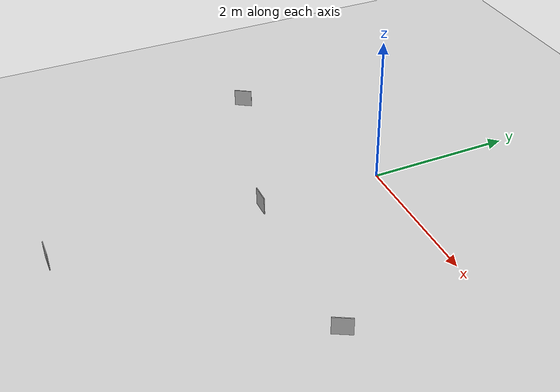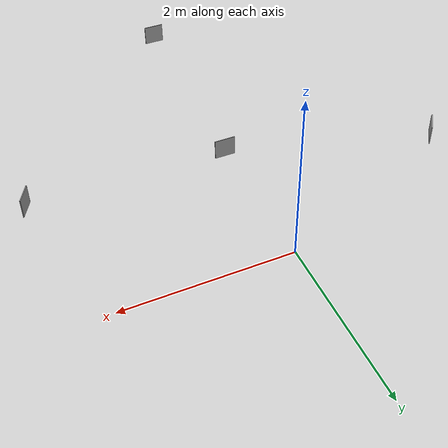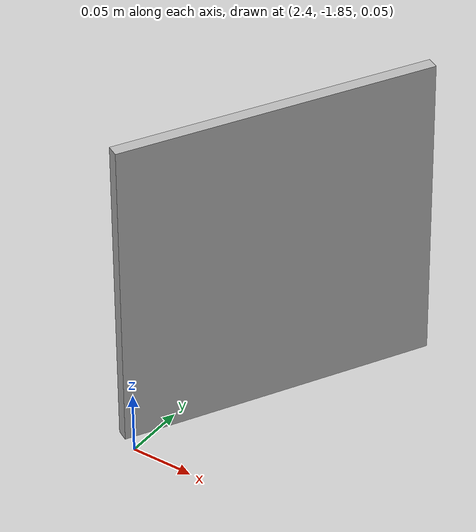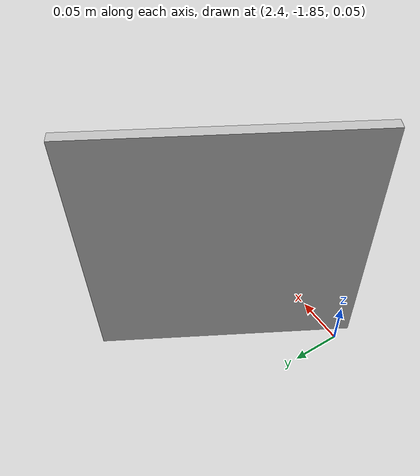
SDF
<sdf version="1.7">
 <world name="default">
  <model name="ground_plane">
   <static>1</static>
   <link name="link">
    <collision name="collision">
     <geometry><plane><normal>0 0 1</normal><size>100 100</size></plane></geometry>
     <surface><friction><ode><mu>100</mu><mu2>50</mu2></ode></friction></surface>
    </collision>
    <visual name="visual">
     <cast_shadows>0</cast_shadows>
     <geometry><plane><normal>0 0 1</normal><size>100 100</size></plane></geometry>
     <material>
      <script><uri>file://media/materials/scripts/gazebo.material</uri><name>Gazebo/Grey</name></script>
     </material>
    </visual>
   </link>
  </model>
  <light name="sun" type="directional">
   <pose>0 0 10 0 -0 0</pose>
   <diffuse>0.8 0.8 0.8 1</diffuse>
   <specular>0.2 0.2 0.2 1</specular>
   <attenuation>
    <range>1000</range>
    <constant>0.9</constant>
    <linear>0.01</linear>
    <quadratic>0.001</quadratic>
   </attenuation>
   <direction>-0.5 0.1 -0.9</direction>
   <spot><inner_angle>0</inner_angle><outer_angle>0</outer_angle><falloff>0</falloff></spot>
  </light>
  <scene><shadows>0</shadows><ambient>0.4 0.4 0.4 1</ambient><background>0.7 0.7 0.7 1</background></scene>
  <physics type="ode">
   <real_time_update_rate>1000</real_time_update_rate>
   <max_step_size>0.001</max_step_size>
   <real_time_factor>1</real_time_factor>
   <ode>
    <solver>
     <type>quick</type>
     <iters>150</iters>
     <precon_iters>0</precon_iters>
     <sor>1.4</sor>
     <use_dynamic_moi_rescaling>1</use_dynamic_moi_rescaling>
    </solver>
    <constraints>
     <cfm>1e-05</cfm>
     <erp>0.2</erp>
     <contact_max_correcting_vel>2000</contact_max_correcting_vel>
     <contact_surface_layer>0.01</contact_surface_layer>
    </constraints>
   </ode>
  </physics>
  <gravity>0 0 -9.8</gravity>
  <magnetic_field>6e-06 2.3e-05 -4.2e-05</magnetic_field>
  <atmosphere type="adiabatic"/>
  <spherical_coordinates>
   <surface_model>EARTH_WGS84</surface_model>
   <latitude_deg>0</latitude_deg>
   <longitude_deg>0</longitude_deg>
   <elevation>0</elevation>
   <heading_deg>0</heading_deg>
  </spherical_coordinates>
  <model name="qr_code_1">
   <static>1</static>
   <link name="link">
    <visual name="visual">
     <cast_shadows>0</cast_shadows>
     <geometry><box><size>0.01 0.25 0.25</size></box></geometry>
     <material>
      <script>
       <uri>model://qr_code_1/materials/scripts</uri>
       <uri>model://qr_code_1/materials/textures</uri>
       <name>QRCode1/Image</name>
      </script>
     </material>
    </visual>
   </link>
   <pose>0.070555 -1.71324 0.17892 0 -0 1.5708</pose>
  </model>
  <model name="qr_code_2">
   <static>1</static>
   <link name="link">
    <visual name="visual">
     <cast_shadows>0</cast_shadows>
     <geometry><box><size>0.01 0.25 0.25</size></box></geometry>
     <material>
      <script>
       <uri>model://qr_code_2/materials/scripts</uri>
       <uri>model://qr_code_2/materials/textures</uri>
       <name>QRCode2/Image</name>
      </script>
     </material>
    </visual>
   </link>
   <pose>-2.34949 -0.996304 0.183697 0 0 -0.582397</pose>
  </model>
  <model name="qr_code_3">
   <static>1</static>
   <link name="link">
    <visual name="visual">
     <cast_shadows>0</cast_shadows>
     <geometry><box><size>0.01 0.25 0.25</size></box></geometry>
     <material>
      <script>
       <uri>model://qr_code_3/materials/scripts</uri>
       <uri>model://qr_code_3/materials/textures</uri>
       <name>QRCode3/Image</name>
      </script>
     </material>
    </visual>
   </link>
   <pose>-0.006665 -4.39261 0.189432 0 0 -1.5708</pose>
  </model>
  <model name="qr_code_4">
   <static>1</static>
   <link name="link">
    <visual name="visual">
     <cast_shadows>0</cast_shadows>
     <geometry><box><size>0.01 0.25 0.25</size></box></geometry>
     <material>
      <script>
       <uri>model://qr_code_4/materials/scripts</uri>
       <uri>model://qr_code_4/materials/textures</uri>
       <name>QRCode4/Image</name>
      </script>
     </material>
    </visual>
   </link>
   <pose>2.45805 -1.75125 0.194086 0 0 -0.50711</pose>
  </model>
 </world>
</sdf>
